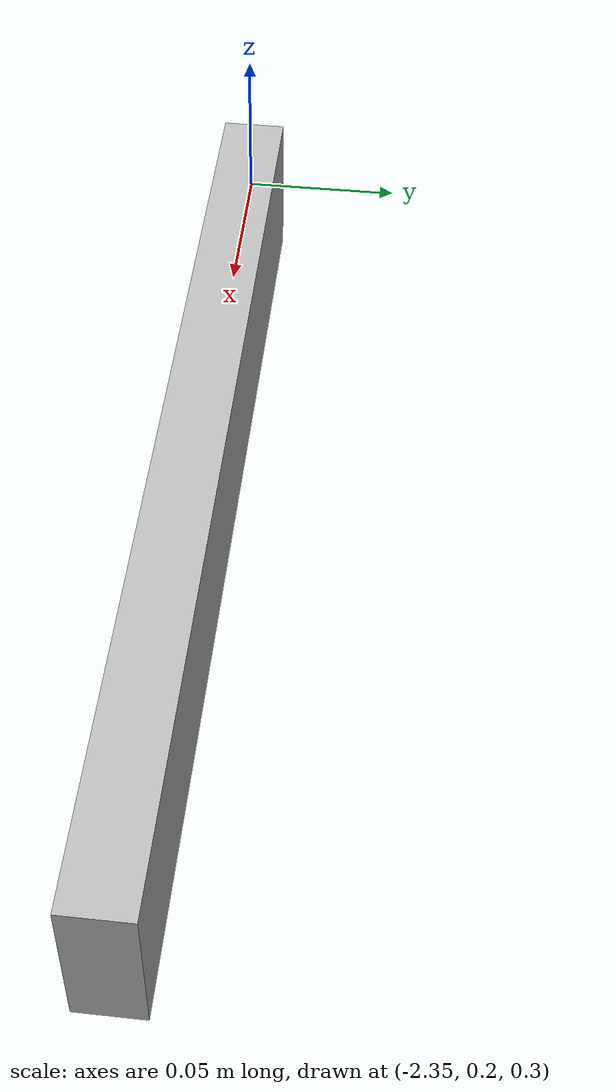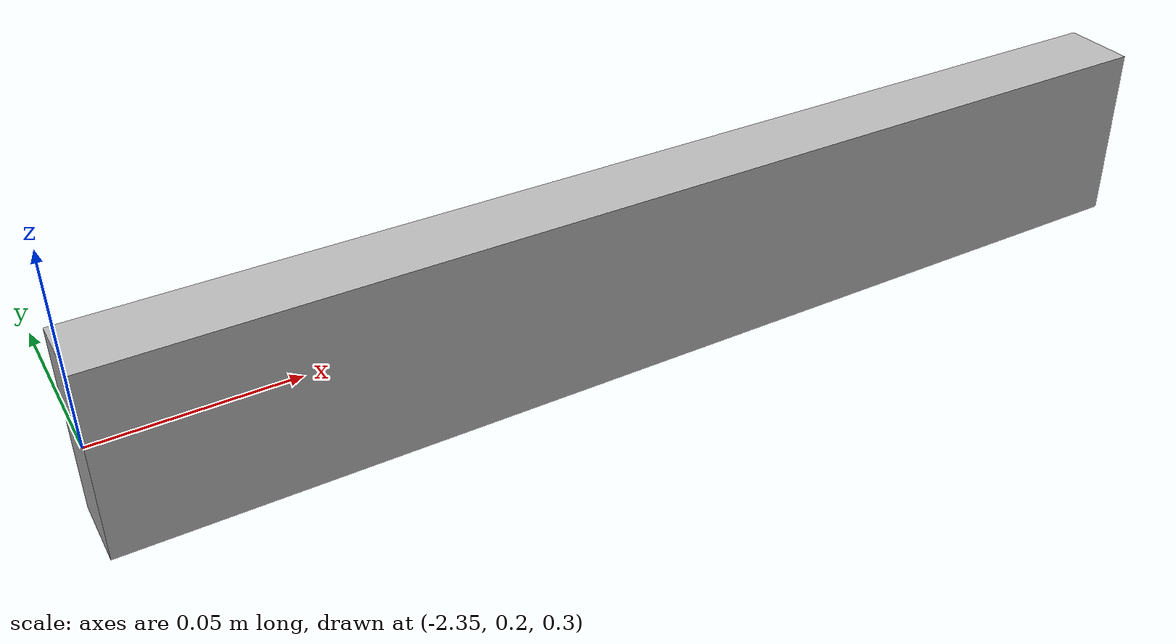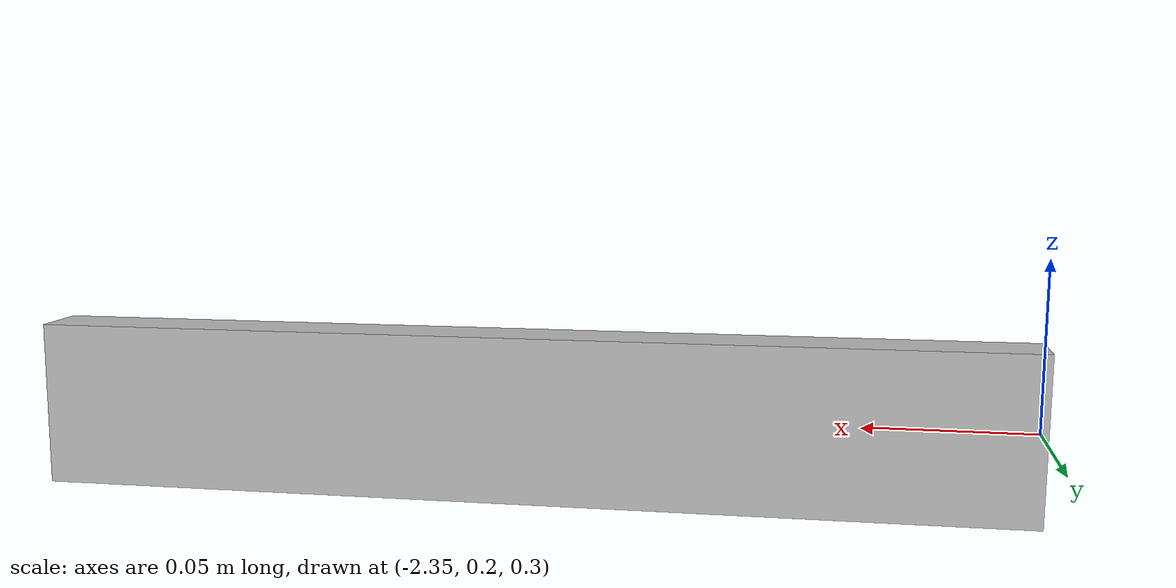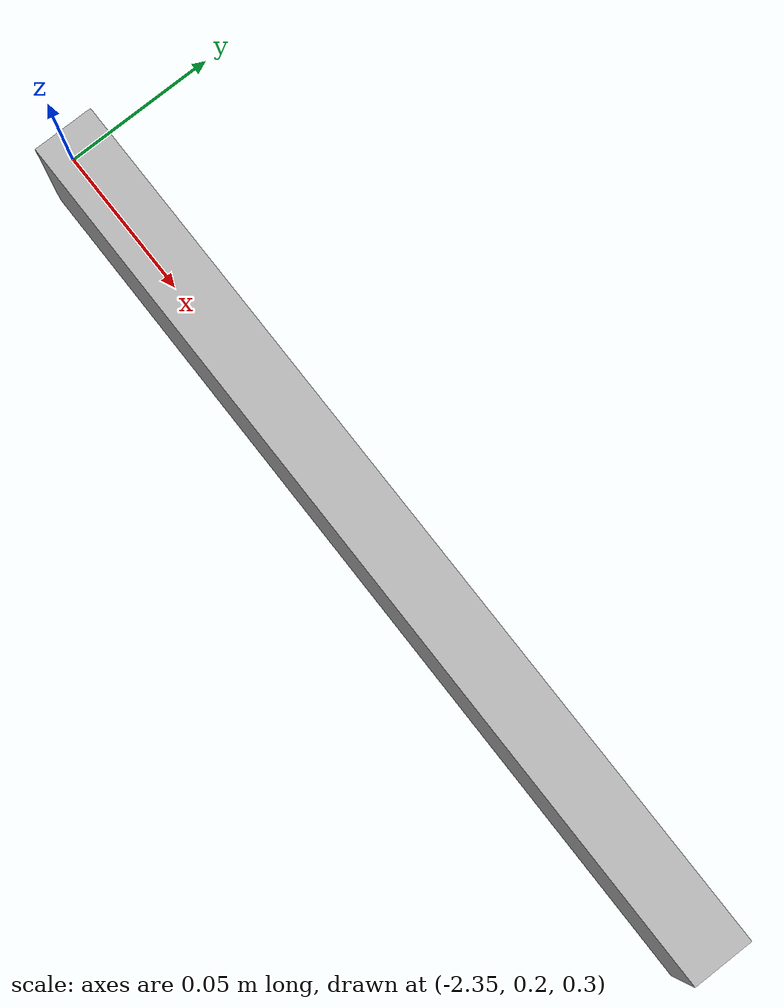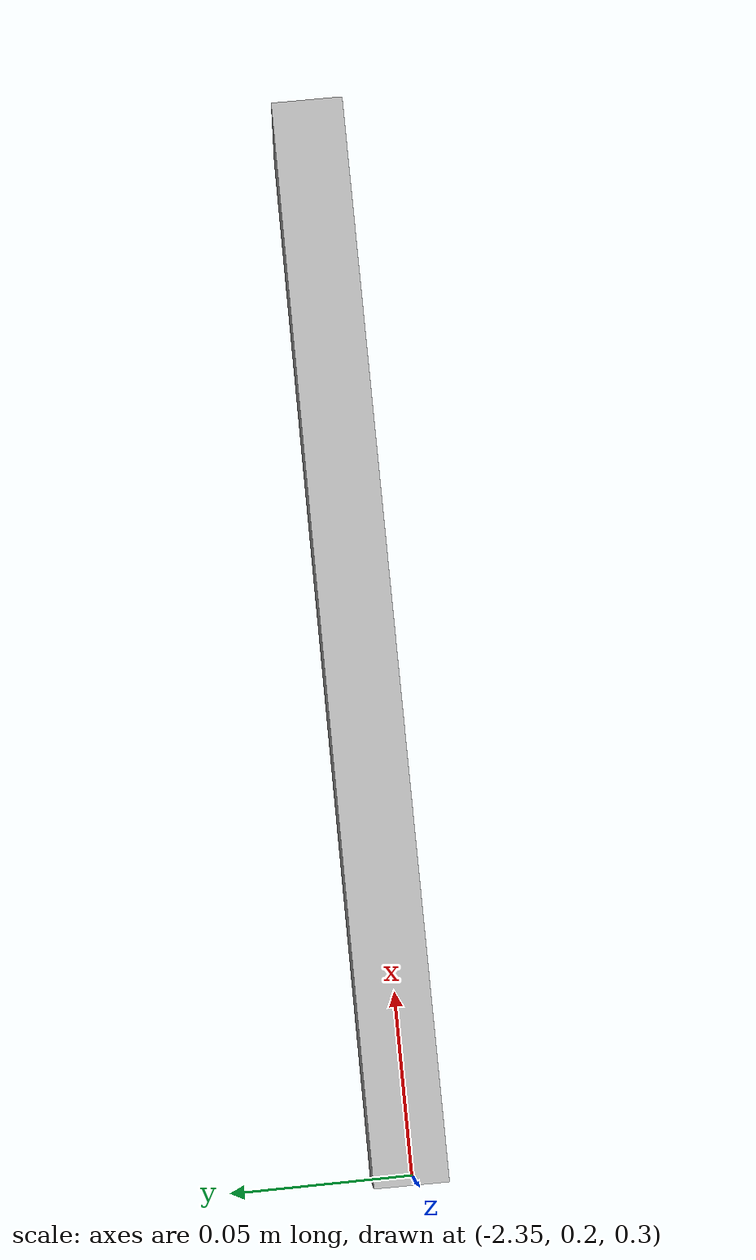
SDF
<?xml version='1.0'?>
<sdf version="1.6">
  <model name="traffic_bar_up">
    <pose frame=''>-1.0 1.2 0.15 0 0 1.57</pose>
    <link name="traffic_bar_up">
      <collision name="collision">
        <pose frame=''>-1.0 1.2 0.15 0 0 1.57</pose>
        <geometry>
          <box>
            <size>0.3 0.02 0.05</size>
          </box>
        </geometry>
      </collision>
      <visual name="visual">
        <pose frame=''>-1.0 1.2 0.15 0 0 1.57</pose>
        <geometry>
          <box>
            <size>0.3 0.02 0.05</size>
          </box>
        </geometry>
        <material>
          <script>
            <uri>model://turtlebot3_autorace_2020/traffic_bar_up/materials/scripts</uri>
            <uri>model://turtlebot3_autorace_2020/traffic_bar_up/materials/textures</uri>
            <name>traffic_bar_up</name>
          </script>
        </material>
      </visual>
    </link>
    <static>1</static>
  </model>
</sdf>
